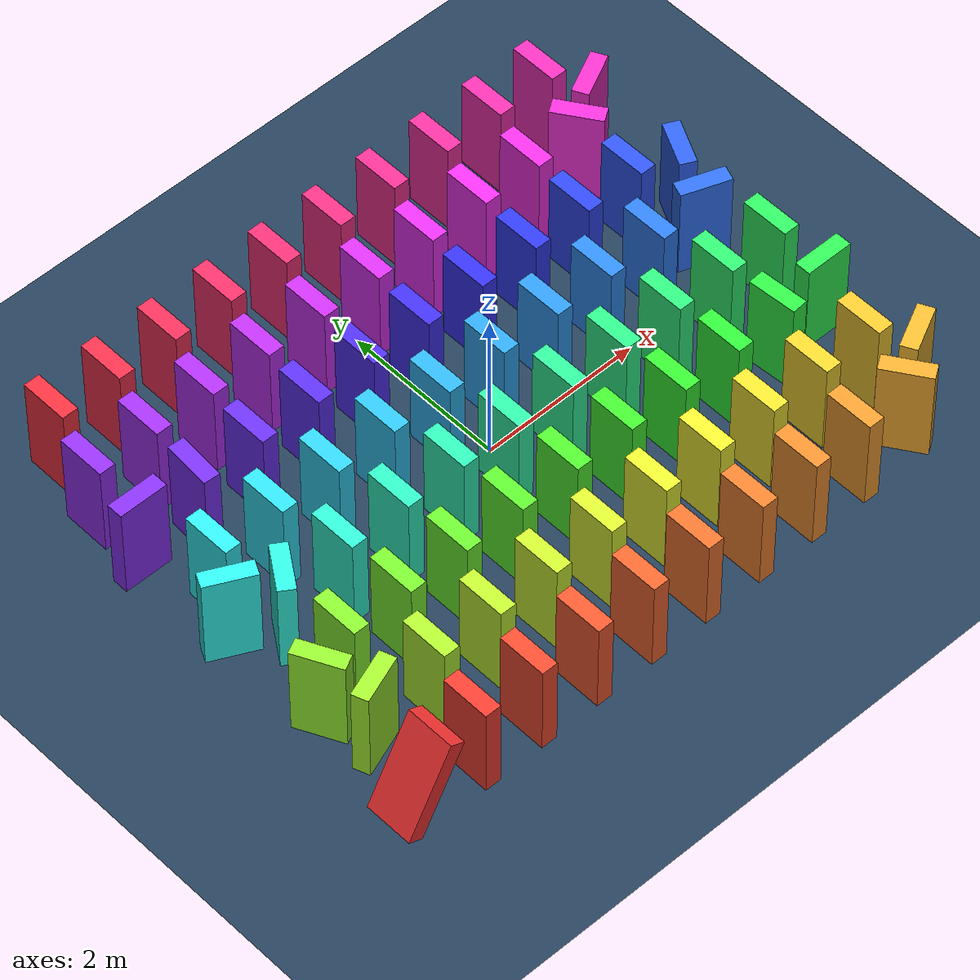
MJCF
<mujoco>
  <visual>
    <headlight diffuse="0.6 0.6 0.6" ambient="0.1 0.1 0.1" specular="0 0 0"/>
    <rgba haze="0.15 0.25 0.35 1"/>
    <global azimuth="120" elevation="-20"/>
  </visual>
  <asset>
    <texture type="skybox" builtin="gradient" rgb1="0.3 0.5 0.7" rgb2="0 0 0" width="512" height="3072"/>
    <texture type="2d" name="groundplane" builtin="checker" mark="edge" rgb1="0.2 0.3 0.4" rgb2="0.1 0.2 0.3" markrgb="0.8 0.8 0.8" width="300" height="300"/>
    <material name="groundplane" texture="groundplane" texuniform="true" texrepeat="5 5" reflectance="0.2"/>
  </asset>
  <worldbody>
    <light pos="0 0 1.5" dir="0 0 -1" directional="true"/>
    <geom name="floor" size="0 0 0.05" type="plane" material="groundplane"/>
    <body name="trigger" pos="-3.6000 -2.8000 0.5767" euler="0 28.0 0.0">
      <geom type="box" size="0.1000 0.3000 0.6000" rgba="0.950 0.190 0.190 1"/>
      <freejoint/>
    </body>
    <body name="domino_001" pos="-2.8500 -2.8000 0.6000" euler="0 0.0 0.0">
      <geom type="box" size="0.1000 0.3000 0.6000" rgba="0.950 0.244 0.190 1"/>
      <freejoint/>
    </body>
    <body name="domino_002" pos="-2.1000 -2.8000 0.6000" euler="0 0.0 0.0">
      <geom type="box" size="0.1000 0.3000 0.6000" rgba="0.950 0.297 0.190 1"/>
      <freejoint/>
    </body>
    <body name="domino_003" pos="-1.3500 -2.8000 0.6000" euler="0 0.0 0.0">
      <geom type="box" size="0.1000 0.3000 0.6000" rgba="0.950 0.351 0.190 1"/>
      <freejoint/>
    </body>
    <body name="domino_004" pos="-0.6000 -2.8000 0.6000" euler="0 0.0 0.0">
      <geom type="box" size="0.1000 0.3000 0.6000" rgba="0.950 0.404 0.190 1"/>
      <freejoint/>
    </body>
    <body name="domino_005" pos="0.1500 -2.8000 0.6000" euler="0 0.0 0.0">
      <geom type="box" size="0.1000 0.3000 0.6000" rgba="0.950 0.458 0.190 1"/>
      <freejoint/>
    </body>
    <body name="domino_006" pos="0.9000 -2.8000 0.6000" euler="0 0.0 0.0">
      <geom type="box" size="0.1000 0.3000 0.6000" rgba="0.950 0.512 0.190 1"/>
      <freejoint/>
    </body>
    <body name="domino_007" pos="1.6500 -2.8000 0.6000" euler="0 0.0 0.0">
      <geom type="box" size="0.1000 0.3000 0.6000" rgba="0.950 0.565 0.190 1"/>
      <freejoint/>
    </body>
    <body name="domino_008" pos="2.4000 -2.8000 0.6000" euler="0 0.0 0.0">
      <geom type="box" size="0.1000 0.3000 0.6000" rgba="0.950 0.619 0.190 1"/>
      <freejoint/>
    </body>
    <body name="domino_009" pos="3.1500 -2.8000 0.6000" euler="0 0.0 33.7">
      <geom type="box" size="0.1000 0.3000 0.6000" rgba="0.950 0.672 0.190 1"/>
      <freejoint/>
    </body>
    <body name="domino_010" pos="3.6000 -2.5000 0.6000" euler="0 0.0 116.6">
      <geom type="box" size="0.1000 0.3000 0.6000" rgba="0.950 0.726 0.190 1"/>
      <freejoint/>
    </body>
    <body name="domino_011" pos="3.3500 -2.0000 0.6000" euler="0 0.0 180.0">
      <geom type="box" size="0.1000 0.3000 0.6000" rgba="0.950 0.780 0.190 1"/>
      <freejoint/>
    </body>
    <body name="domino_012" pos="2.6000 -2.0000 0.6000" euler="0 0.0 180.0">
      <geom type="box" size="0.1000 0.3000 0.6000" rgba="0.950 0.833 0.190 1"/>
      <freejoint/>
    </body>
    <body name="domino_013" pos="1.8500 -2.0000 0.6000" euler="0 0.0 180.0">
      <geom type="box" size="0.1000 0.3000 0.6000" rgba="0.950 0.887 0.190 1"/>
      <freejoint/>
    </body>
    <body name="domino_014" pos="1.1000 -2.0000 0.6000" euler="0 0.0 180.0">
      <geom type="box" size="0.1000 0.3000 0.6000" rgba="0.944 0.934 0.190 1"/>
      <freejoint/>
    </body>
    <body name="domino_015" pos="0.3500 -2.0000 0.6000" euler="0 0.0 180.0">
      <geom type="box" size="0.1000 0.3000 0.6000" rgba="0.906 0.950 0.190 1"/>
      <freejoint/>
    </body>
    <body name="domino_016" pos="-0.4000 -2.0000 0.6000" euler="0 0.0 180.0">
      <geom type="box" size="0.1000 0.3000 0.6000" rgba="0.852 0.950 0.190 1"/>
      <freejoint/>
    </body>
    <body name="domino_017" pos="-1.1500 -2.0000 0.6000" euler="0 0.0 180.0">
      <geom type="box" size="0.1000 0.3000 0.6000" rgba="0.799 0.950 0.190 1"/>
      <freejoint/>
    </body>
    <body name="domino_018" pos="-1.9000 -2.0000 0.6000" euler="0 0.0 180.0">
      <geom type="box" size="0.1000 0.3000 0.6000" rgba="0.745 0.950 0.190 1"/>
      <freejoint/>
    </body>
    <body name="domino_019" pos="-2.6500 -2.0000 0.6000" euler="0 0.0 180.0">
      <geom type="box" size="0.1000 0.3000 0.6000" rgba="0.691 0.950 0.190 1"/>
      <freejoint/>
    </body>
    <body name="domino_020" pos="-3.4000 -2.0000 0.6000" euler="0 0.0 110.0">
      <geom type="box" size="0.1000 0.3000 0.6000" rgba="0.638 0.950 0.190 1"/>
      <freejoint/>
    </body>
    <body name="domino_021" pos="-3.6000 -1.4500 0.6000" euler="0 0.0 26.6">
      <geom type="box" size="0.1000 0.3000 0.6000" rgba="0.584 0.950 0.190 1"/>
      <freejoint/>
    </body>
    <body name="domino_022" pos="-3.1000 -1.2000 0.6000" euler="0 0.0 0.0">
      <geom type="box" size="0.1000 0.3000 0.6000" rgba="0.531 0.950 0.190 1"/>
      <freejoint/>
    </body>
    <body name="domino_023" pos="-2.3500 -1.2000 0.6000" euler="0 0.0 0.0">
      <geom type="box" size="0.1000 0.3000 0.6000" rgba="0.477 0.950 0.190 1"/>
      <freejoint/>
    </body>
    <body name="domino_024" pos="-1.6000 -1.2000 0.6000" euler="0 0.0 0.0">
      <geom type="box" size="0.1000 0.3000 0.6000" rgba="0.423 0.950 0.190 1"/>
      <freejoint/>
    </body>
    <body name="domino_025" pos="-0.8500 -1.2000 0.6000" euler="0 0.0 0.0">
      <geom type="box" size="0.1000 0.3000 0.6000" rgba="0.370 0.950 0.190 1"/>
      <freejoint/>
    </body>
    <body name="domino_026" pos="-0.1000 -1.2000 0.6000" euler="0 0.0 0.0">
      <geom type="box" size="0.1000 0.3000 0.6000" rgba="0.316 0.950 0.190 1"/>
      <freejoint/>
    </body>
    <body name="domino_027" pos="0.6500 -1.2000 0.6000" euler="0 0.0 0.0">
      <geom type="box" size="0.1000 0.3000 0.6000" rgba="0.263 0.950 0.190 1"/>
      <freejoint/>
    </body>
    <body name="domino_028" pos="1.4000 -1.2000 0.6000" euler="0 0.0 0.0">
      <geom type="box" size="0.1000 0.3000 0.6000" rgba="0.215 0.950 0.196 1"/>
      <freejoint/>
    </body>
    <body name="domino_029" pos="2.1500 -1.2000 0.6000" euler="0 0.0 0.0">
      <geom type="box" size="0.1000 0.3000 0.6000" rgba="0.190 0.950 0.225 1"/>
      <freejoint/>
    </body>
    <body name="domino_030" pos="2.9000 -1.2000 0.6000" euler="0 0.0 4.1">
      <geom type="box" size="0.1000 0.3000 0.6000" rgba="0.190 0.950 0.278 1"/>
      <freejoint/>
    </body>
    <body name="domino_031" pos="3.6000 -1.1500 0.6000" euler="0 0.0 90.0">
      <geom type="box" size="0.1000 0.3000 0.6000" rgba="0.190 0.950 0.332 1"/>
      <freejoint/>
    </body>
    <body name="domino_032" pos="3.6000 -0.4000 0.6000" euler="0 0.0 180.0">
      <geom type="box" size="0.1000 0.3000 0.6000" rgba="0.190 0.950 0.385 1"/>
      <freejoint/>
    </body>
    <body name="domino_033" pos="2.8500 -0.4000 0.6000" euler="0 0.0 180.0">
      <geom type="box" size="0.1000 0.3000 0.6000" rgba="0.190 0.950 0.439 1"/>
      <freejoint/>
    </body>
    <body name="domino_034" pos="2.1000 -0.4000 0.6000" euler="0 0.0 180.0">
      <geom type="box" size="0.1000 0.3000 0.6000" rgba="0.190 0.950 0.493 1"/>
      <freejoint/>
    </body>
    <body name="domino_035" pos="1.3500 -0.4000 0.6000" euler="0 0.0 180.0">
      <geom type="box" size="0.1000 0.3000 0.6000" rgba="0.190 0.950 0.546 1"/>
      <freejoint/>
    </body>
    <body name="domino_036" pos="0.6000 -0.4000 0.6000" euler="0 0.0 180.0">
      <geom type="box" size="0.1000 0.3000 0.6000" rgba="0.190 0.950 0.600 1"/>
      <freejoint/>
    </body>
    <body name="domino_037" pos="-0.1500 -0.4000 0.6000" euler="0 0.0 180.0">
      <geom type="box" size="0.1000 0.3000 0.6000" rgba="0.190 0.950 0.653 1"/>
      <freejoint/>
    </body>
    <body name="domino_038" pos="-0.9000 -0.4000 0.6000" euler="0 0.0 180.0">
      <geom type="box" size="0.1000 0.3000 0.6000" rgba="0.190 0.950 0.707 1"/>
      <freejoint/>
    </body>
    <body name="domino_039" pos="-1.6500 -0.4000 0.6000" euler="0 0.0 180.0">
      <geom type="box" size="0.1000 0.3000 0.6000" rgba="0.190 0.950 0.761 1"/>
      <freejoint/>
    </body>
    <body name="domino_040" pos="-2.4000 -0.4000 0.6000" euler="0 0.0 180.0">
      <geom type="box" size="0.1000 0.3000 0.6000" rgba="0.190 0.950 0.814 1"/>
      <freejoint/>
    </body>
    <body name="domino_041" pos="-3.1500 -0.4000 0.6000" euler="0 0.0 146.3">
      <geom type="box" size="0.1000 0.3000 0.6000" rgba="0.190 0.950 0.868 1"/>
      <freejoint/>
    </body>
    <body name="domino_042" pos="-3.6000 -0.1000 0.6000" euler="0 0.0 63.4">
      <geom type="box" size="0.1000 0.3000 0.6000" rgba="0.190 0.950 0.921 1"/>
      <freejoint/>
    </body>
    <body name="domino_043" pos="-3.3500 0.4000 0.6000" euler="0 0.0 0.0">
      <geom type="box" size="0.1000 0.3000 0.6000" rgba="0.190 0.925 0.950 1"/>
      <freejoint/>
    </body>
    <body name="domino_044" pos="-2.6000 0.4000 0.6000" euler="0 0.0 0.0">
      <geom type="box" size="0.1000 0.3000 0.6000" rgba="0.190 0.871 0.950 1"/>
      <freejoint/>
    </body>
    <body name="domino_045" pos="-1.8500 0.4000 0.6000" euler="0 0.0 0.0">
      <geom type="box" size="0.1000 0.3000 0.6000" rgba="0.190 0.818 0.950 1"/>
      <freejoint/>
    </body>
    <body name="domino_046" pos="-1.1000 0.4000 0.6000" euler="0 0.0 0.0">
      <geom type="box" size="0.1000 0.3000 0.6000" rgba="0.190 0.764 0.950 1"/>
      <freejoint/>
    </body>
    <body name="domino_047" pos="-0.3500 0.4000 0.6000" euler="0 0.0 0.0">
      <geom type="box" size="0.1000 0.3000 0.6000" rgba="0.190 0.710 0.950 1"/>
      <freejoint/>
    </body>
    <body name="domino_048" pos="0.4000 0.4000 0.6000" euler="0 0.0 0.0">
      <geom type="box" size="0.1000 0.3000 0.6000" rgba="0.190 0.657 0.950 1"/>
      <freejoint/>
    </body>
    <body name="domino_049" pos="1.1500 0.4000 0.6000" euler="0 0.0 0.0">
      <geom type="box" size="0.1000 0.3000 0.6000" rgba="0.190 0.603 0.950 1"/>
      <freejoint/>
    </body>
    <body name="domino_050" pos="1.9000 0.4000 0.6000" euler="0 0.0 0.0">
      <geom type="box" size="0.1000 0.3000 0.6000" rgba="0.190 0.550 0.950 1"/>
      <freejoint/>
    </body>
    <body name="domino_051" pos="2.6500 0.4000 0.6000" euler="0 0.0 0.0">
      <geom type="box" size="0.1000 0.3000 0.6000" rgba="0.190 0.496 0.950 1"/>
      <freejoint/>
    </body>
    <body name="domino_052" pos="3.4000 0.4000 0.6000" euler="0 0.0 70.0">
      <geom type="box" size="0.1000 0.3000 0.6000" rgba="0.190 0.442 0.950 1"/>
      <freejoint/>
    </body>
    <body name="domino_053" pos="3.6000 0.9500 0.6000" euler="0 0.0 153.4">
      <geom type="box" size="0.1000 0.3000 0.6000" rgba="0.190 0.389 0.950 1"/>
      <freejoint/>
    </body>
    <body name="domino_054" pos="3.1000 1.2000 0.6000" euler="0 0.0 180.0">
      <geom type="box" size="0.1000 0.3000 0.6000" rgba="0.190 0.335 0.950 1"/>
      <freejoint/>
    </body>
    <body name="domino_055" pos="2.3500 1.2000 0.6000" euler="0 0.0 180.0">
      <geom type="box" size="0.1000 0.3000 0.6000" rgba="0.190 0.282 0.950 1"/>
      <freejoint/>
    </body>
    <body name="domino_056" pos="1.6000 1.2000 0.6000" euler="0 0.0 180.0">
      <geom type="box" size="0.1000 0.3000 0.6000" rgba="0.190 0.228 0.950 1"/>
      <freejoint/>
    </body>
    <body name="domino_057" pos="0.8500 1.2000 0.6000" euler="0 0.0 180.0">
      <geom type="box" size="0.1000 0.3000 0.6000" rgba="0.213 0.197 0.950 1"/>
      <freejoint/>
    </body>
    <body name="domino_058" pos="0.1000 1.2000 0.6000" euler="0 0.0 180.0">
      <geom type="box" size="0.1000 0.3000 0.6000" rgba="0.259 0.190 0.950 1"/>
      <freejoint/>
    </body>
    <body name="domino_059" pos="-0.6500 1.2000 0.6000" euler="0 0.0 180.0">
      <geom type="box" size="0.1000 0.3000 0.6000" rgba="0.313 0.190 0.950 1"/>
      <freejoint/>
    </body>
    <body name="domino_060" pos="-1.4000 1.2000 0.6000" euler="0 0.0 180.0">
      <geom type="box" size="0.1000 0.3000 0.6000" rgba="0.366 0.190 0.950 1"/>
      <freejoint/>
    </body>
    <body name="domino_061" pos="-2.1500 1.2000 0.6000" euler="0 0.0 180.0">
      <geom type="box" size="0.1000 0.3000 0.6000" rgba="0.420 0.190 0.950 1"/>
      <freejoint/>
    </body>
    <body name="domino_062" pos="-2.9000 1.2000 0.6000" euler="0 0.0 175.9">
      <geom type="box" size="0.1000 0.3000 0.6000" rgba="0.474 0.190 0.950 1"/>
      <freejoint/>
    </body>
    <body name="domino_063" pos="-3.6000 1.2500 0.6000" euler="0 0.0 90.0">
      <geom type="box" size="0.1000 0.3000 0.6000" rgba="0.527 0.190 0.950 1"/>
      <freejoint/>
    </body>
    <body name="domino_064" pos="-3.6000 2.0000 0.6000" euler="0 0.0 0.0">
      <geom type="box" size="0.1000 0.3000 0.6000" rgba="0.581 0.190 0.950 1"/>
      <freejoint/>
    </body>
    <body name="domino_065" pos="-2.8500 2.0000 0.6000" euler="0 0.0 0.0">
      <geom type="box" size="0.1000 0.3000 0.6000" rgba="0.634 0.190 0.950 1"/>
      <freejoint/>
    </body>
    <body name="domino_066" pos="-2.1000 2.0000 0.6000" euler="0 0.0 0.0">
      <geom type="box" size="0.1000 0.3000 0.6000" rgba="0.688 0.190 0.950 1"/>
      <freejoint/>
    </body>
    <body name="domino_067" pos="-1.3500 2.0000 0.6000" euler="0 0.0 0.0">
      <geom type="box" size="0.1000 0.3000 0.6000" rgba="0.742 0.190 0.950 1"/>
      <freejoint/>
    </body>
    <body name="domino_068" pos="-0.6000 2.0000 0.6000" euler="0 0.0 0.0">
      <geom type="box" size="0.1000 0.3000 0.6000" rgba="0.795 0.190 0.950 1"/>
      <freejoint/>
    </body>
    <body name="domino_069" pos="0.1500 2.0000 0.6000" euler="0 0.0 0.0">
      <geom type="box" size="0.1000 0.3000 0.6000" rgba="0.849 0.190 0.950 1"/>
      <freejoint/>
    </body>
    <body name="domino_070" pos="0.9000 2.0000 0.6000" euler="0 0.0 0.0">
      <geom type="box" size="0.1000 0.3000 0.6000" rgba="0.902 0.190 0.950 1"/>
      <freejoint/>
    </body>
    <body name="domino_071" pos="1.6500 2.0000 0.6000" euler="0 0.0 0.0">
      <geom type="box" size="0.1000 0.3000 0.6000" rgba="0.941 0.190 0.935 1"/>
      <freejoint/>
    </body>
    <body name="domino_072" pos="2.4000 2.0000 0.6000" euler="0 0.0 0.0">
      <geom type="box" size="0.1000 0.3000 0.6000" rgba="0.950 0.190 0.890 1"/>
      <freejoint/>
    </body>
    <body name="domino_073" pos="3.1500 2.0000 0.6000" euler="0 0.0 33.7">
      <geom type="box" size="0.1000 0.3000 0.6000" rgba="0.950 0.190 0.837 1"/>
      <freejoint/>
    </body>
    <body name="domino_074" pos="3.6000 2.3000 0.6000" euler="0 0.0 116.6">
      <geom type="box" size="0.1000 0.3000 0.6000" rgba="0.950 0.190 0.783 1"/>
      <freejoint/>
    </body>
    <body name="domino_075" pos="3.3500 2.8000 0.6000" euler="0 0.0 180.0">
      <geom type="box" size="0.1000 0.3000 0.6000" rgba="0.950 0.190 0.729 1"/>
      <freejoint/>
    </body>
    <body name="domino_076" pos="2.6000 2.8000 0.6000" euler="0 0.0 180.0">
      <geom type="box" size="0.1000 0.3000 0.6000" rgba="0.950 0.190 0.676 1"/>
      <freejoint/>
    </body>
    <body name="domino_077" pos="1.8500 2.8000 0.6000" euler="0 0.0 180.0">
      <geom type="box" size="0.1000 0.3000 0.6000" rgba="0.950 0.190 0.622 1"/>
      <freejoint/>
    </body>
    <body name="domino_078" pos="1.1000 2.8000 0.6000" euler="0 0.0 180.0">
      <geom type="box" size="0.1000 0.3000 0.6000" rgba="0.950 0.190 0.569 1"/>
      <freejoint/>
    </body>
    <body name="domino_079" pos="0.3500 2.8000 0.6000" euler="0 0.0 180.0">
      <geom type="box" size="0.1000 0.3000 0.6000" rgba="0.950 0.190 0.515 1"/>
      <freejoint/>
    </body>
    <body name="domino_080" pos="-0.4000 2.8000 0.6000" euler="0 0.0 180.0">
      <geom type="box" size="0.1000 0.3000 0.6000" rgba="0.950 0.190 0.461 1"/>
      <freejoint/>
    </body>
    <body name="domino_081" pos="-1.1500 2.8000 0.6000" euler="0 0.0 180.0">
      <geom type="box" size="0.1000 0.3000 0.6000" rgba="0.950 0.190 0.408 1"/>
      <freejoint/>
    </body>
    <body name="domino_082" pos="-1.9000 2.8000 0.6000" euler="0 0.0 180.0">
      <geom type="box" size="0.1000 0.3000 0.6000" rgba="0.950 0.190 0.354 1"/>
      <freejoint/>
    </body>
    <body name="domino_083" pos="-2.6500 2.8000 0.6000" euler="0 0.0 180.0">
      <geom type="box" size="0.1000 0.3000 0.6000" rgba="0.950 0.190 0.301 1"/>
      <freejoint/>
    </body>
    <body name="domino_084" pos="-3.4000 2.8000 0.6000" euler="0 0.0 180.0">
      <geom type="box" size="0.1000 0.3000 0.6000" rgba="0.950 0.190 0.247 1"/>
      <freejoint/>
    </body>
  </worldbody>
</mujoco>
